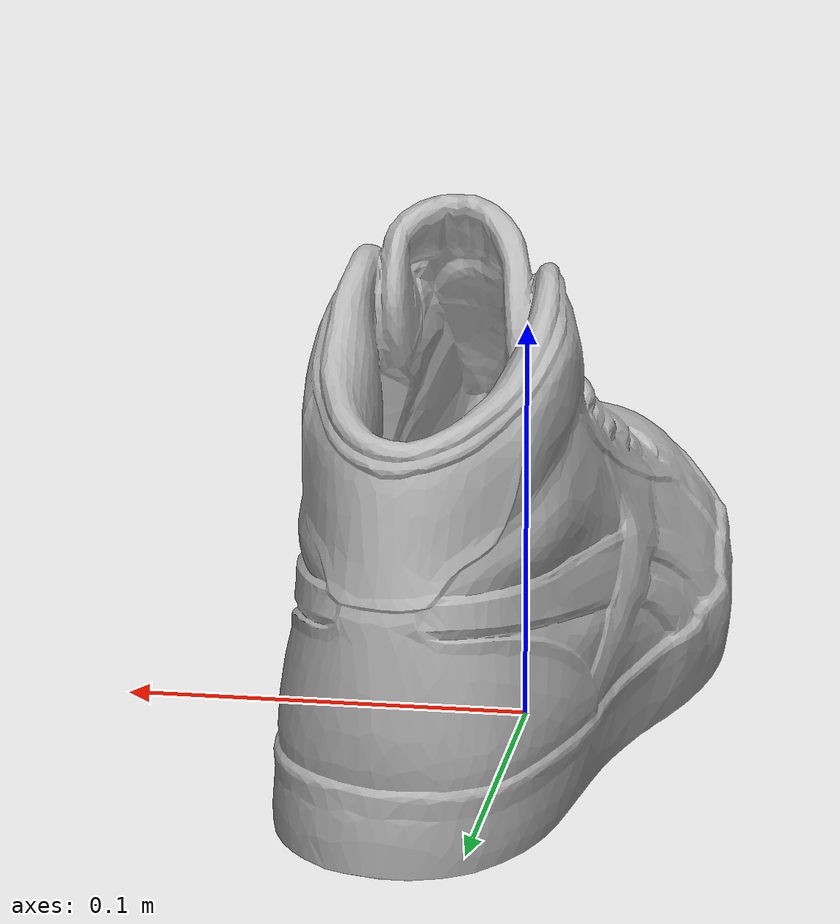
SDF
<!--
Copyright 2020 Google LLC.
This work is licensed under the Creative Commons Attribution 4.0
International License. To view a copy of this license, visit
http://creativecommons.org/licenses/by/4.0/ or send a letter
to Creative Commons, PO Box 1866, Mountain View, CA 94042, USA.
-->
<?xml version="1.0" ?>
<sdf version="1.6">
  <model name="Reebok_BREAKPOINT_MID">
    <link name="link_0">
      <visual name="visual">
        <geometry>
          <mesh>
            <uri>meshes/model.obj</uri>
          </mesh>
        </geometry>
      </visual>
      <collision name="collision_0">
        <geometry>
          <mesh>
            <uri>meshes/model.obj</uri>
          </mesh>
        </geometry>
      </collision>
    </link>
  </model>
</sdf>
